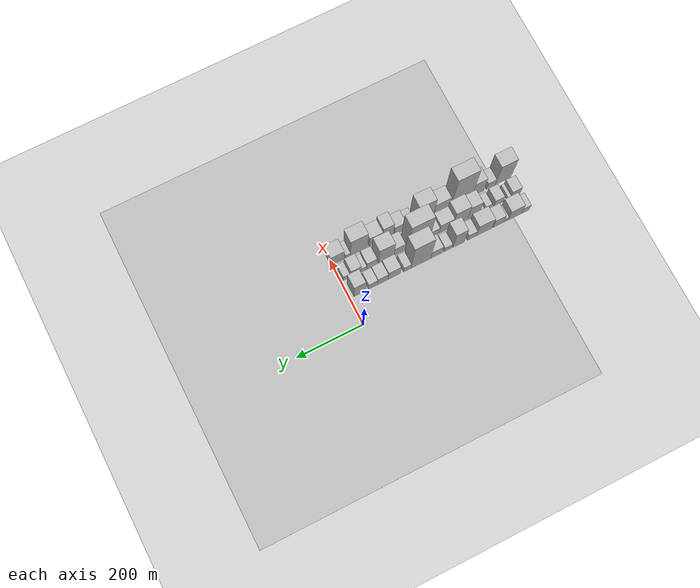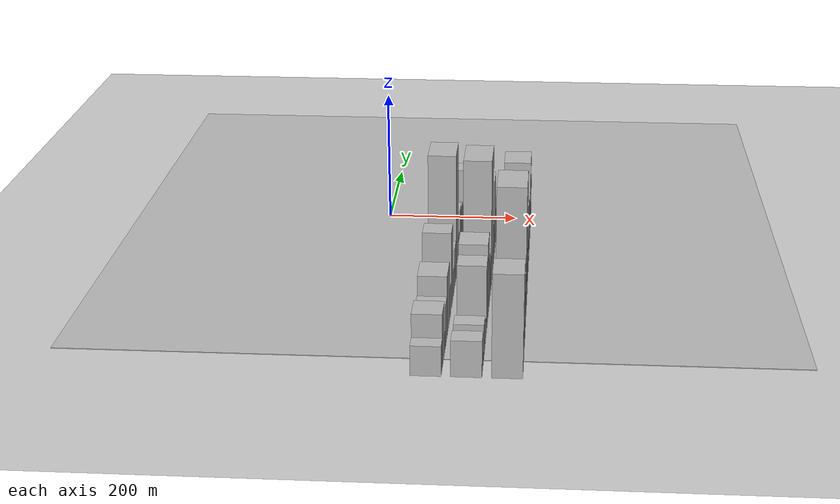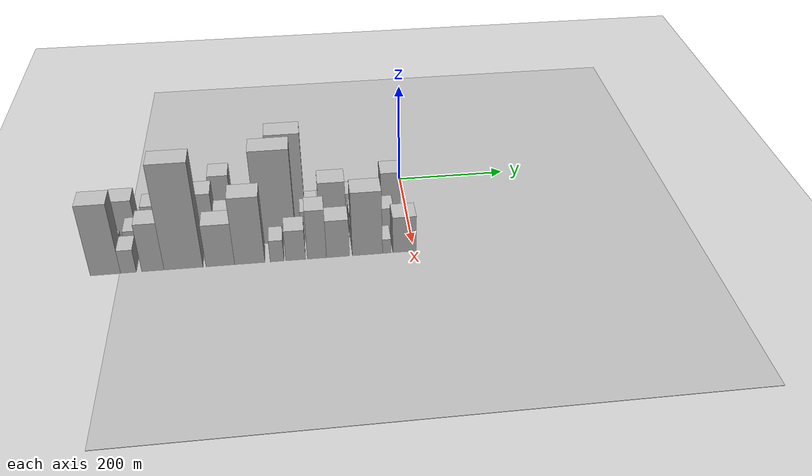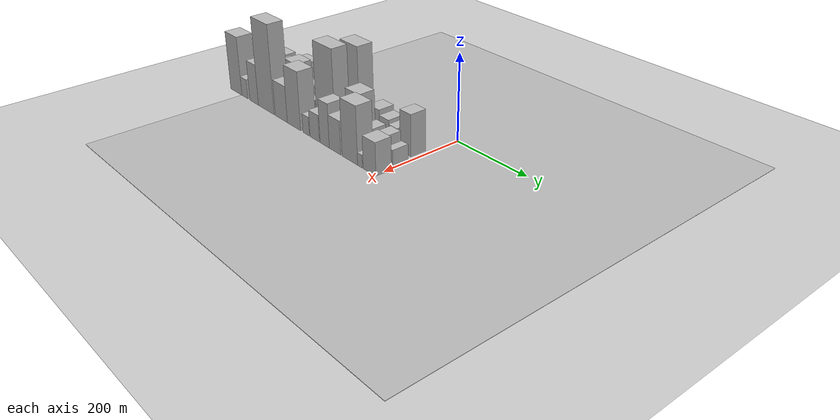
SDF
<sdf version="1.6">
 <world name="default">
  <include><name>ground_plane_1</name><uri>model://HANNAS_ground_plane</uri></include>
  <include>
   <name>ground_plane_2</name>
   <uri>model://HANNAS_ground_plane</uri>
   <pose>100 0 0  0 0 0</pose>
  </include>
  <model name="building_1">
   <static>1</static>
   <pose>100.0000 -535.8190 0 0.000000 0.000000 0.000000</pose>
   <link name="link">
    <pose>0 0 21.00 0 0 0</pose>
    <collision name="collision"><geometry><box><size>40.0000 24.3621 42.0000</size></box></geometry></collision>
    <visual name="visual">
     <cast_shadows>0</cast_shadows>
     <geometry><box><size>40.0000 24.3621 42.0000</size></box></geometry>
     <material>
      <script>
       <uri>model://HANNAS_wall/materials/scripts</uri>
       <uri>model://HANNAS_wall/materials/textures</uri>
       <name>vrc/HANNAS_wall</name>
      </script>
     </material>
    </visual>
   </link>
  </model>
  <model name="building_2">
   <static>1</static>
   <pose>100.0000 -502.9617 0 0.000000 0.000000 0.000000</pose>
   <link name="link">
    <pose>0 0 37.50 0 0 0</pose>
    <collision name="collision"><geometry><box><size>40.0000 41.3526 75.0000</size></box></geometry></collision>
    <visual name="visual">
     <cast_shadows>0</cast_shadows>
     <geometry><box><size>40.0000 41.3526 75.0000</size></box></geometry>
     <material>
      <script>
       <uri>model://HANNAS_wall/materials/scripts</uri>
       <uri>model://HANNAS_wall/materials/textures</uri>
       <name>vrc/HANNAS_wall</name>
      </script>
     </material>
    </visual>
   </link>
  </model>
  <model name="building_3">
   <static>1</static>
   <pose>100.0000 -475.5732 0 0.000000 0.000000 0.000000</pose>
   <link name="link">
    <pose>0 0 13.50 0 0 0</pose>
    <collision name="collision"><geometry><box><size>40.0000 13.4244 27.0000</size></box></geometry></collision>
    <visual name="visual">
     <cast_shadows>0</cast_shadows>
     <geometry><box><size>40.0000 13.4244 27.0000</size></box></geometry>
     <material>
      <script>
       <uri>model://HANNAS_wall/materials/scripts</uri>
       <uri>model://HANNAS_wall/materials/textures</uri>
       <name>vrc/HANNAS_wall</name>
      </script>
     </material>
    </visual>
   </link>
  </model>
  <model name="building_4">
   <static>1</static>
   <pose>100.0000 -452.2671 0 0.000000 0.000000 0.000000</pose>
   <link name="link">
    <pose>0 0 30.00 0 0 0</pose>
    <collision name="collision"><geometry><box><size>40.0000 33.1878 60.0000</size></box></geometry></collision>
    <visual name="visual">
     <cast_shadows>0</cast_shadows>
     <geometry><box><size>40.0000 33.1878 60.0000</size></box></geometry>
     <material>
      <script>
       <uri>model://HANNAS_wall/materials/scripts</uri>
       <uri>model://HANNAS_wall/materials/textures</uri>
       <name>vrc/HANNAS_wall</name>
      </script>
     </material>
    </visual>
   </link>
  </model>
  <model name="building_5">
   <static>1</static>
   <pose>100.0000 -407.6439 0 0.000000 0.000000 0.000000</pose>
   <link name="link">
    <pose>0 0 43.50 0 0 0</pose>
    <collision name="collision"><geometry><box><size>40.0000 48.0586 87.0000</size></box></geometry></collision>
    <visual name="visual">
     <cast_shadows>0</cast_shadows>
     <geometry><box><size>40.0000 48.0586 87.0000</size></box></geometry>
     <material>
      <script>
       <uri>model://HANNAS_wall/materials/scripts</uri>
       <uri>model://HANNAS_wall/materials/textures</uri>
       <name>vrc/HANNAS_wall</name>
      </script>
     </material>
    </visual>
   </link>
  </model>
  <model name="building_6">
   <static>1</static>
   <pose>100.0000 -370.3365 0 0.000000 0.000000 0.000000</pose>
   <link name="link">
    <pose>0 0 22.50 0 0 0</pose>
    <collision name="collision"><geometry><box><size>40.0000 26.5561 45.0000</size></box></geometry></collision>
    <visual name="visual">
     <cast_shadows>0</cast_shadows>
     <geometry><box><size>40.0000 26.5561 45.0000</size></box></geometry>
     <material>
      <script>
       <uri>model://HANNAS_wall/materials/scripts</uri>
       <uri>model://HANNAS_wall/materials/textures</uri>
       <name>vrc/HANNAS_wall</name>
      </script>
     </material>
    </visual>
   </link>
  </model>
  <model name="building_7">
   <static>1</static>
   <pose>100.0000 -329.3796 0 0.000000 0.000000 0.000000</pose>
   <link name="link">
    <pose>0 0 57.00 0 0 0</pose>
    <collision name="collision"><geometry><box><size>40.0000 35.3578 114.0000</size></box></geometry></collision>
    <visual name="visual">
     <cast_shadows>0</cast_shadows>
     <geometry><box><size>40.0000 35.3578 114.0000</size></box></geometry>
     <material>
      <script>
       <uri>model://HANNAS_wall/materials/scripts</uri>
       <uri>model://HANNAS_wall/materials/textures</uri>
       <name>vrc/HANNAS_wall</name>
      </script>
     </material>
    </visual>
   </link>
  </model>
  <model name="building_8">
   <static>1</static>
   <pose>100.0000 -297.0140 0 0.000000 0.000000 0.000000</pose>
   <link name="link">
    <pose>0 0 19.50 0 0 0</pose>
    <collision name="collision"><geometry><box><size>40.0000 23.3734 39.0000</size></box></geometry></collision>
    <visual name="visual">
     <cast_shadows>0</cast_shadows>
     <geometry><box><size>40.0000 23.3734 39.0000</size></box></geometry>
     <material>
      <script>
       <uri>model://HANNAS_wall/materials/scripts</uri>
       <uri>model://HANNAS_wall/materials/textures</uri>
       <name>vrc/HANNAS_wall</name>
      </script>
     </material>
    </visual>
   </link>
  </model>
  <model name="building_9">
   <static>1</static>
   <pose>100.0000 -261.6188 0 0.000000 0.000000 0.000000</pose>
   <link name="link">
    <pose>0 0 30.00 0 0 0</pose>
    <collision name="collision"><geometry><box><size>40.0000 35.4170 60.0000</size></box></geometry></collision>
    <visual name="visual">
     <cast_shadows>0</cast_shadows>
     <geometry><box><size>40.0000 35.4170 60.0000</size></box></geometry>
     <material>
      <script>
       <uri>model://HANNAS_wall/materials/scripts</uri>
       <uri>model://HANNAS_wall/materials/textures</uri>
       <name>vrc/HANNAS_wall</name>
      </script>
     </material>
    </visual>
   </link>
  </model>
  <model name="building_10">
   <static>1</static>
   <pose>100.0000 -213.8391 0 0.000000 0.000000 0.000000</pose>
   <link name="link">
    <pose>0 0 94.50 0 0 0</pose>
    <collision name="collision"><geometry><box><size>40.0000 60.1424 189.0000</size></box></geometry></collision>
    <visual name="visual">
     <cast_shadows>0</cast_shadows>
     <geometry><box><size>40.0000 60.1424 189.0000</size></box></geometry>
     <material>
      <script>
       <uri>model://HANNAS_wall/materials/scripts</uri>
       <uri>model://HANNAS_wall/materials/textures</uri>
       <name>vrc/HANNAS_wall</name>
      </script>
     </material>
    </visual>
   </link>
  </model>
  <model name="building_11">
   <static>1</static>
   <pose>100.0000 -172.6313 0 0.000000 0.000000 0.000000</pose>
   <link name="link">
    <pose>0 0 21.00 0 0 0</pose>
    <collision name="collision"><geometry><box><size>40.0000 22.2732 42.0000</size></box></geometry></collision>
    <visual name="visual">
     <cast_shadows>0</cast_shadows>
     <geometry><box><size>40.0000 22.2732 42.0000</size></box></geometry>
     <material>
      <script>
       <uri>model://HANNAS_wall/materials/scripts</uri>
       <uri>model://HANNAS_wall/materials/textures</uri>
       <name>vrc/HANNAS_wall</name>
      </script>
     </material>
    </visual>
   </link>
  </model>
  <model name="building_12">
   <static>1</static>
   <pose>100.0000 -133.0729 0 0.000000 0.000000 0.000000</pose>
   <link name="link">
    <pose>0 0 34.50 0 0 0</pose>
    <collision name="collision"><geometry><box><size>40.0000 36.8435 69.0000</size></box></geometry></collision>
    <visual name="visual">
     <cast_shadows>0</cast_shadows>
     <geometry><box><size>40.0000 36.8435 69.0000</size></box></geometry>
     <material>
      <script>
       <uri>model://HANNAS_wall/materials/scripts</uri>
       <uri>model://HANNAS_wall/materials/textures</uri>
       <name>vrc/HANNAS_wall</name>
      </script>
     </material>
    </visual>
   </link>
  </model>
  <model name="building_13">
   <static>1</static>
   <pose>100.0000 -98.9799 0 0.000000 0.000000 0.000000</pose>
   <link name="link">
    <pose>0 0 28.50 0 0 0</pose>
    <collision name="collision"><geometry><box><size>40.0000 31.3427 57.0000</size></box></geometry></collision>
    <visual name="visual">
     <cast_shadows>0</cast_shadows>
     <geometry><box><size>40.0000 31.3427 57.0000</size></box></geometry>
     <material>
      <script>
       <uri>model://HANNAS_wall/materials/scripts</uri>
       <uri>model://HANNAS_wall/materials/textures</uri>
       <name>vrc/HANNAS_wall</name>
      </script>
     </material>
    </visual>
   </link>
  </model>
  <model name="building_14">
   <static>1</static>
   <pose>100.0000 -69.6493 0 0.000000 0.000000 0.000000</pose>
   <link name="link">
    <pose>0 0 24.00 0 0 0</pose>
    <collision name="collision"><geometry><box><size>40.0000 27.3186 48.0000</size></box></geometry></collision>
    <visual name="visual">
     <cast_shadows>0</cast_shadows>
     <geometry><box><size>40.0000 27.3186 48.0000</size></box></geometry>
     <material>
      <script>
       <uri>model://HANNAS_wall/materials/scripts</uri>
       <uri>model://HANNAS_wall/materials/textures</uri>
       <name>vrc/HANNAS_wall</name>
      </script>
     </material>
    </visual>
   </link>
  </model>
  <model name="building_15">
   <static>1</static>
   <pose>100.0000 -29.5580 0 0.000000 0.000000 0.000000</pose>
   <link name="link">
    <pose>0 0 48.00 0 0 0</pose>
    <collision name="collision"><geometry><box><size>40.0000 34.8640 96.0000</size></box></geometry></collision>
    <visual name="visual">
     <cast_shadows>0</cast_shadows>
     <geometry><box><size>40.0000 34.8640 96.0000</size></box></geometry>
     <material>
      <script>
       <uri>model://HANNAS_wall/materials/scripts</uri>
       <uri>model://HANNAS_wall/materials/textures</uri>
       <name>vrc/HANNAS_wall</name>
      </script>
     </material>
    </visual>
   </link>
  </model>
  <model name="building_32">
   <static>1</static>
   <pose>152.0000 -533.0698 0 0.000000 0.000000 0.000000</pose>
   <link name="link">
    <pose>0 0 25.50 0 0 0</pose>
    <collision name="collision"><geometry><box><size>40.0000 29.8603 51.0000</size></box></geometry></collision>
    <visual name="visual">
     <cast_shadows>0</cast_shadows>
     <geometry><box><size>40.0000 29.8603 51.0000</size></box></geometry>
     <material>
      <script>
       <uri>model://HANNAS_wall/materials/scripts</uri>
       <uri>model://HANNAS_wall/materials/textures</uri>
       <name>vrc/HANNAS_wall</name>
      </script>
     </material>
    </visual>
   </link>
  </model>
  <model name="building_33">
   <static>1</static>
   <pose>152.0000 -513.2131 0 0.000000 0.000000 0.000000</pose>
   <link name="link">
    <pose>0 0 10.50 0 0 0</pose>
    <collision name="collision"><geometry><box><size>40.0000 9.8531 21.0000</size></box></geometry></collision>
    <visual name="visual">
     <cast_shadows>0</cast_shadows>
     <geometry><box><size>40.0000 9.8531 21.0000</size></box></geometry>
     <material>
      <script>
       <uri>model://HANNAS_wall/materials/scripts</uri>
       <uri>model://HANNAS_wall/materials/textures</uri>
       <name>vrc/HANNAS_wall</name>
      </script>
     </material>
    </visual>
   </link>
  </model>
  <model name="building_34">
   <static>1</static>
   <pose>152.0000 -498.3470 0 0.000000 0.000000 0.000000</pose>
   <link name="link">
    <pose>0 0 9.00 0 0 0</pose>
    <collision name="collision"><geometry><box><size>40.0000 7.8790 18.0000</size></box></geometry></collision>
    <visual name="visual">
     <cast_shadows>0</cast_shadows>
     <geometry><box><size>40.0000 7.8790 18.0000</size></box></geometry>
     <material>
      <script>
       <uri>model://HANNAS_wall/materials/scripts</uri>
       <uri>model://HANNAS_wall/materials/textures</uri>
       <name>vrc/HANNAS_wall</name>
      </script>
     </material>
    </visual>
   </link>
  </model>
  <model name="building_35">
   <static>1</static>
   <pose>152.0000 -480.3053 0 0.000000 0.000000 0.000000</pose>
   <link name="link">
    <pose>0 0 24.00 0 0 0</pose>
    <collision name="collision"><geometry><box><size>40.0000 28.2044 48.0000</size></box></geometry></collision>
    <visual name="visual">
     <cast_shadows>0</cast_shadows>
     <geometry><box><size>40.0000 28.2044 48.0000</size></box></geometry>
     <material>
      <script>
       <uri>model://HANNAS_wall/materials/scripts</uri>
       <uri>model://HANNAS_wall/materials/textures</uri>
       <name>vrc/HANNAS_wall</name>
      </script>
     </material>
    </visual>
   </link>
  </model>
  <model name="building_36">
   <static>1</static>
   <pose>152.0000 -448.7710 0 0.000000 0.000000 0.000000</pose>
   <link name="link">
    <pose>0 0 16.50 0 0 0</pose>
    <collision name="collision"><geometry><box><size>40.0000 18.8643 33.0000</size></box></geometry></collision>
    <visual name="visual">
     <cast_shadows>0</cast_shadows>
     <geometry><box><size>40.0000 18.8643 33.0000</size></box></geometry>
     <material>
      <script>
       <uri>model://HANNAS_wall/materials/scripts</uri>
       <uri>model://HANNAS_wall/materials/textures</uri>
       <name>vrc/HANNAS_wall</name>
      </script>
     </material>
    </visual>
   </link>
  </model>
  <model name="building_37">
   <static>1</static>
   <pose>152.0000 -429.8766 0 0.000000 0.000000 0.000000</pose>
   <link name="link">
    <pose>0 0 12.00 0 0 0</pose>
    <collision name="collision"><geometry><box><size>40.0000 10.9245 24.0000</size></box></geometry></collision>
    <visual name="visual">
     <cast_shadows>0</cast_shadows>
     <geometry><box><size>40.0000 10.9245 24.0000</size></box></geometry>
     <material>
      <script>
       <uri>model://HANNAS_wall/materials/scripts</uri>
       <uri>model://HANNAS_wall/materials/textures</uri>
       <name>vrc/HANNAS_wall</name>
      </script>
     </material>
    </visual>
   </link>
  </model>
  <model name="building_38">
   <static>1</static>
   <pose>152.0000 -403.1165 0 0.000000 0.000000 0.000000</pose>
   <link name="link">
    <pose>0 0 49.50 0 0 0</pose>
    <collision name="collision"><geometry><box><size>40.0000 36.5957 99.0000</size></box></geometry></collision>
    <visual name="visual">
     <cast_shadows>0</cast_shadows>
     <geometry><box><size>40.0000 36.5957 99.0000</size></box></geometry>
     <material>
      <script>
       <uri>model://HANNAS_wall/materials/scripts</uri>
       <uri>model://HANNAS_wall/materials/textures</uri>
       <name>vrc/HANNAS_wall</name>
      </script>
     </material>
    </visual>
   </link>
  </model>
  <model name="building_39">
   <static>1</static>
   <pose>152.0000 -362.3064 0 0.000000 0.000000 0.000000</pose>
   <link name="link">
    <pose>0 0 57.00 0 0 0</pose>
    <collision name="collision"><geometry><box><size>40.0000 45.0245 114.0000</size></box></geometry></collision>
    <visual name="visual">
     <cast_shadows>0</cast_shadows>
     <geometry><box><size>40.0000 45.0245 114.0000</size></box></geometry>
     <material>
      <script>
       <uri>model://HANNAS_wall/materials/scripts</uri>
       <uri>model://HANNAS_wall/materials/textures</uri>
       <name>vrc/HANNAS_wall</name>
      </script>
     </material>
    </visual>
   </link>
  </model>
  <model name="building_40">
   <static>1</static>
   <pose>152.0000 -318.4839 0 0.000000 0.000000 0.000000</pose>
   <link name="link">
    <pose>0 0 36.00 0 0 0</pose>
    <collision name="collision"><geometry><box><size>40.0000 42.6206 72.0000</size></box></geometry></collision>
    <visual name="visual">
     <cast_shadows>0</cast_shadows>
     <geometry><box><size>40.0000 42.6206 72.0000</size></box></geometry>
     <material>
      <script>
       <uri>model://HANNAS_wall/materials/scripts</uri>
       <uri>model://HANNAS_wall/materials/textures</uri>
       <name>vrc/HANNAS_wall</name>
      </script>
     </material>
    </visual>
   </link>
  </model>
  <model name="building_41">
   <static>1</static>
   <pose>152.0000 -283.6506 0 0.000000 0.000000 0.000000</pose>
   <link name="link">
    <pose>0 0 25.50 0 0 0</pose>
    <collision name="collision"><geometry><box><size>40.0000 27.0461 51.0000</size></box></geometry></collision>
    <visual name="visual">
     <cast_shadows>0</cast_shadows>
     <geometry><box><size>40.0000 27.0461 51.0000</size></box></geometry>
     <material>
      <script>
       <uri>model://HANNAS_wall/materials/scripts</uri>
       <uri>model://HANNAS_wall/materials/textures</uri>
       <name>vrc/HANNAS_wall</name>
      </script>
     </material>
    </visual>
   </link>
  </model>
  <model name="building_42">
   <static>1</static>
   <pose>152.0000 -236.3345 0 0.000000 0.000000 0.000000</pose>
   <link name="link">
    <pose>0 0 96.00 0 0 0</pose>
    <collision name="collision"><geometry><box><size>40.0000 67.5860 192.0000</size></box></geometry></collision>
    <visual name="visual">
     <cast_shadows>0</cast_shadows>
     <geometry><box><size>40.0000 67.5860 192.0000</size></box></geometry>
     <material>
      <script>
       <uri>model://HANNAS_wall/materials/scripts</uri>
       <uri>model://HANNAS_wall/materials/textures</uri>
       <name>vrc/HANNAS_wall</name>
      </script>
     </material>
    </visual>
   </link>
  </model>
  <model name="building_43">
   <static>1</static>
   <pose>152.0000 -176.0911 0 0.000000 0.000000 0.000000</pose>
   <link name="link">
    <pose>0 0 31.50 0 0 0</pose>
    <collision name="collision"><geometry><box><size>40.0000 32.9008 63.0000</size></box></geometry></collision>
    <visual name="visual">
     <cast_shadows>0</cast_shadows>
     <geometry><box><size>40.0000 32.9008 63.0000</size></box></geometry>
     <material>
      <script>
       <uri>model://HANNAS_wall/materials/scripts</uri>
       <uri>model://HANNAS_wall/materials/textures</uri>
       <name>vrc/HANNAS_wall</name>
      </script>
     </material>
    </visual>
   </link>
  </model>
  <model name="building_44">
   <static>1</static>
   <pose>152.0000 -136.3132 0 0.000000 0.000000 0.000000</pose>
   <link name="link">
    <pose>0 0 60.00 0 0 0</pose>
    <collision name="collision"><geometry><box><size>40.0000 46.6549 120.0000</size></box></geometry></collision>
    <visual name="visual">
     <cast_shadows>0</cast_shadows>
     <geometry><box><size>40.0000 46.6549 120.0000</size></box></geometry>
     <material>
      <script>
       <uri>model://HANNAS_wall/materials/scripts</uri>
       <uri>model://HANNAS_wall/materials/textures</uri>
       <name>vrc/HANNAS_wall</name>
      </script>
     </material>
    </visual>
   </link>
  </model>
  <model name="building_45">
   <static>1</static>
   <pose>152.0000 -92.5729 0 0.000000 0.000000 0.000000</pose>
   <link name="link">
    <pose>0 0 27.00 0 0 0</pose>
    <collision name="collision"><geometry><box><size>40.0000 30.8257 54.0000</size></box></geometry></collision>
    <visual name="visual">
     <cast_shadows>0</cast_shadows>
     <geometry><box><size>40.0000 30.8257 54.0000</size></box></geometry>
     <material>
      <script>
       <uri>model://HANNAS_wall/materials/scripts</uri>
       <uri>model://HANNAS_wall/materials/textures</uri>
       <name>vrc/HANNAS_wall</name>
      </script>
     </material>
    </visual>
   </link>
  </model>
  <model name="building_46">
   <static>1</static>
   <pose>152.0000 -68.8843 0 0.000000 0.000000 0.000000</pose>
   <link name="link">
    <pose>0 0 15.00 0 0 0</pose>
    <collision name="collision"><geometry><box><size>40.0000 16.5515 30.0000</size></box></geometry></collision>
    <visual name="visual">
     <cast_shadows>0</cast_shadows>
     <geometry><box><size>40.0000 16.5515 30.0000</size></box></geometry>
     <material>
      <script>
       <uri>model://HANNAS_wall/materials/scripts</uri>
       <uri>model://HANNAS_wall/materials/textures</uri>
       <name>vrc/HANNAS_wall</name>
      </script>
     </material>
    </visual>
   </link>
  </model>
  <model name="building_47">
   <static>1</static>
   <pose>152.0000 -45.0632 0 0.000000 0.000000 0.000000</pose>
   <link name="link">
    <pose>0 0 28.50 0 0 0</pose>
    <collision name="collision"><geometry><box><size>40.0000 31.0908 57.0000</size></box></geometry></collision>
    <visual name="visual">
     <cast_shadows>0</cast_shadows>
     <geometry><box><size>40.0000 31.0908 57.0000</size></box></geometry>
     <material>
      <script>
       <uri>model://HANNAS_wall/materials/scripts</uri>
       <uri>model://HANNAS_wall/materials/textures</uri>
       <name>vrc/HANNAS_wall</name>
      </script>
     </material>
    </visual>
   </link>
  </model>
  <model name="building_48">
   <static>1</static>
   <pose>152.0000 -16.5471 0 0.000000 0.000000 0.000000</pose>
   <link name="link">
    <pose>0 0 18.00 0 0 0</pose>
    <collision name="collision"><geometry><box><size>40.0000 19.9413 36.0000</size></box></geometry></collision>
    <visual name="visual">
     <cast_shadows>0</cast_shadows>
     <geometry><box><size>40.0000 19.9413 36.0000</size></box></geometry>
     <material>
      <script>
       <uri>model://HANNAS_wall/materials/scripts</uri>
       <uri>model://HANNAS_wall/materials/textures</uri>
       <name>vrc/HANNAS_wall</name>
      </script>
     </material>
    </visual>
   </link>
  </model>
  <model name="building_63">
   <static>1</static>
   <pose>204.0000 -523.1262 0 0.000000 0.000000 0.000000</pose>
   <link name="link">
    <pose>0 0 72.00 0 0 0</pose>
    <collision name="collision"><geometry><box><size>40.0000 49.7476 144.0000</size></box></geometry></collision>
    <visual name="visual">
     <cast_shadows>0</cast_shadows>
     <geometry><box><size>40.0000 49.7476 144.0000</size></box></geometry>
     <material>
      <script>
       <uri>model://HANNAS_wall/materials/scripts</uri>
       <uri>model://HANNAS_wall/materials/textures</uri>
       <name>vrc/HANNAS_wall</name>
      </script>
     </material>
    </visual>
   </link>
  </model>
  <model name="building_64">
   <static>1</static>
   <pose>204.0000 -485.2258 0 0.000000 0.000000 0.000000</pose>
   <link name="link">
    <pose>0 0 24.00 0 0 0</pose>
    <collision name="collision"><geometry><box><size>40.0000 26.0533 48.0000</size></box></geometry></collision>
    <visual name="visual">
     <cast_shadows>0</cast_shadows>
     <geometry><box><size>40.0000 26.0533 48.0000</size></box></geometry>
     <material>
      <script>
       <uri>model://HANNAS_wall/materials/scripts</uri>
       <uri>model://HANNAS_wall/materials/textures</uri>
       <name>vrc/HANNAS_wall</name>
      </script>
     </material>
    </visual>
   </link>
  </model>
  <model name="building_65">
   <static>1</static>
   <pose>204.0000 -444.7749 0 0.000000 0.000000 0.000000</pose>
   <link name="link">
    <pose>0 0 49.50 0 0 0</pose>
    <collision name="collision"><geometry><box><size>40.0000 36.8484 99.0000</size></box></geometry></collision>
    <visual name="visual">
     <cast_shadows>0</cast_shadows>
     <geometry><box><size>40.0000 36.8484 99.0000</size></box></geometry>
     <material>
      <script>
       <uri>model://HANNAS_wall/materials/scripts</uri>
       <uri>model://HANNAS_wall/materials/textures</uri>
       <name>vrc/HANNAS_wall</name>
      </script>
     </material>
    </visual>
   </link>
  </model>
  <model name="building_66">
   <static>1</static>
   <pose>204.0000 -393.8108 0 0.000000 0.000000 0.000000</pose>
   <link name="link">
    <pose>0 0 106.50 0 0 0</pose>
    <collision name="collision"><geometry><box><size>40.0000 65.0797 213.0000</size></box></geometry></collision>
    <visual name="visual">
     <cast_shadows>0</cast_shadows>
     <geometry><box><size>40.0000 65.0797 213.0000</size></box></geometry>
     <material>
      <script>
       <uri>model://HANNAS_wall/materials/scripts</uri>
       <uri>model://HANNAS_wall/materials/textures</uri>
       <name>vrc/HANNAS_wall</name>
      </script>
     </material>
    </visual>
   </link>
  </model>
  <model name="building_67">
   <static>1</static>
   <pose>204.0000 -332.1805 0 0.000000 0.000000 0.000000</pose>
   <link name="link">
    <pose>0 0 43.50 0 0 0</pose>
    <collision name="collision"><geometry><box><size>40.0000 48.1808 87.0000</size></box></geometry></collision>
    <visual name="visual">
     <cast_shadows>0</cast_shadows>
     <geometry><box><size>40.0000 48.1808 87.0000</size></box></geometry>
     <material>
      <script>
       <uri>model://HANNAS_wall/materials/scripts</uri>
       <uri>model://HANNAS_wall/materials/textures</uri>
       <name>vrc/HANNAS_wall</name>
      </script>
     </material>
    </visual>
   </link>
  </model>
  <model name="building_68">
   <static>1</static>
   <pose>204.0000 -282.4832 0 0.000000 0.000000 0.000000</pose>
   <link name="link">
    <pose>0 0 69.00 0 0 0</pose>
    <collision name="collision"><geometry><box><size>40.0000 51.2138 138.0000</size></box></geometry></collision>
    <visual name="visual">
     <cast_shadows>0</cast_shadows>
     <geometry><box><size>40.0000 51.2138 138.0000</size></box></geometry>
     <material>
      <script>
       <uri>model://HANNAS_wall/materials/scripts</uri>
       <uri>model://HANNAS_wall/materials/textures</uri>
       <name>vrc/HANNAS_wall</name>
      </script>
     </material>
    </visual>
   </link>
  </model>
  <model name="building_69">
   <static>1</static>
   <pose>204.0000 -236.0804 0 0.000000 0.000000 0.000000</pose>
   <link name="link">
    <pose>0 0 22.50 0 0 0</pose>
    <collision name="collision"><geometry><box><size>40.0000 23.5918 45.0000</size></box></geometry></collision>
    <visual name="visual">
     <cast_shadows>0</cast_shadows>
     <geometry><box><size>40.0000 23.5918 45.0000</size></box></geometry>
     <material>
      <script>
       <uri>model://HANNAS_wall/materials/scripts</uri>
       <uri>model://HANNAS_wall/materials/textures</uri>
       <name>vrc/HANNAS_wall</name>
      </script>
     </material>
    </visual>
   </link>
  </model>
  <model name="building_70">
   <static>1</static>
   <pose>204.0000 -204.3607 0 0.000000 0.000000 0.000000</pose>
   <link name="link">
    <pose>0 0 31.50 0 0 0</pose>
    <collision name="collision"><geometry><box><size>40.0000 33.8476 63.0000</size></box></geometry></collision>
    <visual name="visual">
     <cast_shadows>0</cast_shadows>
     <geometry><box><size>40.0000 33.8476 63.0000</size></box></geometry>
     <material>
      <script>
       <uri>model://HANNAS_wall/materials/scripts</uri>
       <uri>model://HANNAS_wall/materials/textures</uri>
       <name>vrc/HANNAS_wall</name>
      </script>
     </material>
    </visual>
   </link>
  </model>
  <model name="building_71">
   <static>1</static>
   <pose>204.0000 -168.0877 0 0.000000 0.000000 0.000000</pose>
   <link name="link">
    <pose>0 0 51.00 0 0 0</pose>
    <collision name="collision"><geometry><box><size>40.0000 32.6983 102.0000</size></box></geometry></collision>
    <visual name="visual">
     <cast_shadows>0</cast_shadows>
     <geometry><box><size>40.0000 32.6983 102.0000</size></box></geometry>
     <material>
      <script>
       <uri>model://HANNAS_wall/materials/scripts</uri>
       <uri>model://HANNAS_wall/materials/textures</uri>
       <name>vrc/HANNAS_wall</name>
      </script>
     </material>
    </visual>
   </link>
  </model>
  <model name="building_72">
   <static>1</static>
   <pose>204.0000 -131.8928 0 0.000000 0.000000 0.000000</pose>
   <link name="link">
    <pose>0 0 39.00 0 0 0</pose>
    <collision name="collision"><geometry><box><size>40.0000 39.6916 78.0000</size></box></geometry></collision>
    <visual name="visual">
     <cast_shadows>0</cast_shadows>
     <geometry><box><size>40.0000 39.6916 78.0000</size></box></geometry>
     <material>
      <script>
       <uri>model://HANNAS_wall/materials/scripts</uri>
       <uri>model://HANNAS_wall/materials/textures</uri>
       <name>vrc/HANNAS_wall</name>
      </script>
     </material>
    </visual>
   </link>
  </model>
  <model name="building_73">
   <static>1</static>
   <pose>204.0000 -80.9966 0 0.000000 0.000000 0.000000</pose>
   <link name="link">
    <pose>0 0 66.00 0 0 0</pose>
    <collision name="collision"><geometry><box><size>40.0000 52.1008 132.0000</size></box></geometry></collision>
    <visual name="visual">
     <cast_shadows>0</cast_shadows>
     <geometry><box><size>40.0000 52.1008 132.0000</size></box></geometry>
     <material>
      <script>
       <uri>model://HANNAS_wall/materials/scripts</uri>
       <uri>model://HANNAS_wall/materials/textures</uri>
       <name>vrc/HANNAS_wall</name>
      </script>
     </material>
    </visual>
   </link>
  </model>
  <model name="building_74">
   <static>1</static>
   <pose>204.0000 -47.4094 0 0.000000 0.000000 0.000000</pose>
   <link name="link">
    <pose>0 0 15.00 0 0 0</pose>
    <collision name="collision"><geometry><box><size>40.0000 15.0736 30.0000</size></box></geometry></collision>
    <visual name="visual">
     <cast_shadows>0</cast_shadows>
     <geometry><box><size>40.0000 15.0736 30.0000</size></box></geometry>
     <material>
      <script>
       <uri>model://HANNAS_wall/materials/scripts</uri>
       <uri>model://HANNAS_wall/materials/textures</uri>
       <name>vrc/HANNAS_wall</name>
      </script>
     </material>
    </visual>
   </link>
  </model>
  <model name="building_75">
   <static>1</static>
   <pose>204.0000 -16.4599 0 0.000000 0.000000 0.000000</pose>
   <link name="link">
    <pose>0 0 37.50 0 0 0</pose>
    <collision name="collision"><geometry><box><size>40.0000 40.8256 75.0000</size></box></geometry></collision>
    <visual name="visual">
     <cast_shadows>0</cast_shadows>
     <geometry><box><size>40.0000 40.8256 75.0000</size></box></geometry>
     <material>
      <script>
       <uri>model://HANNAS_wall/materials/scripts</uri>
       <uri>model://HANNAS_wall/materials/textures</uri>
       <name>vrc/HANNAS_wall</name>
      </script>
     </material>
    </visual>
   </link>
  </model>
 </world>
</sdf>
